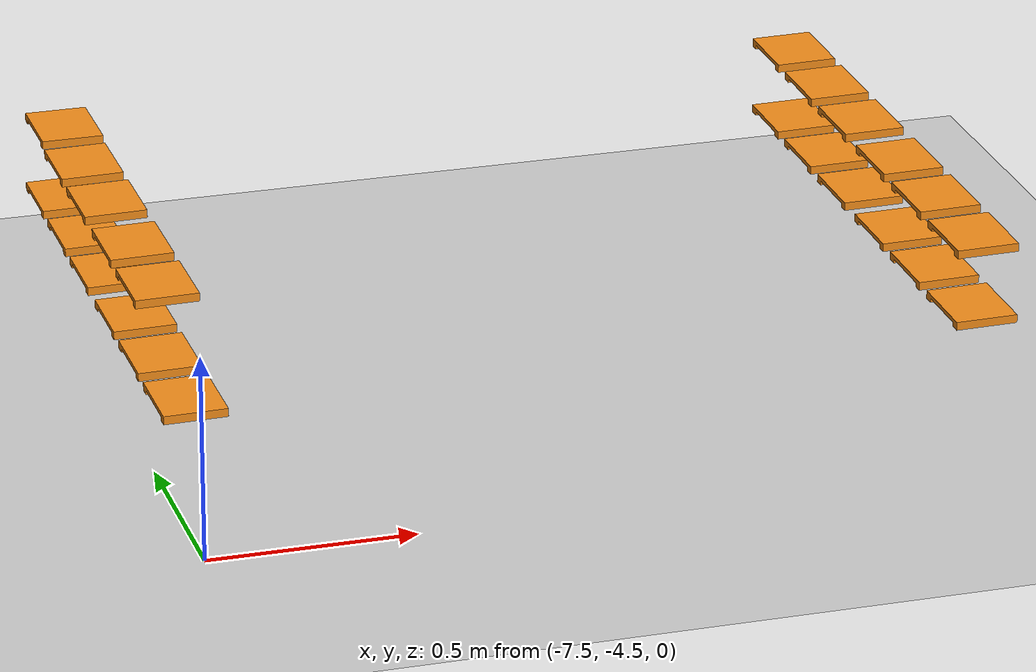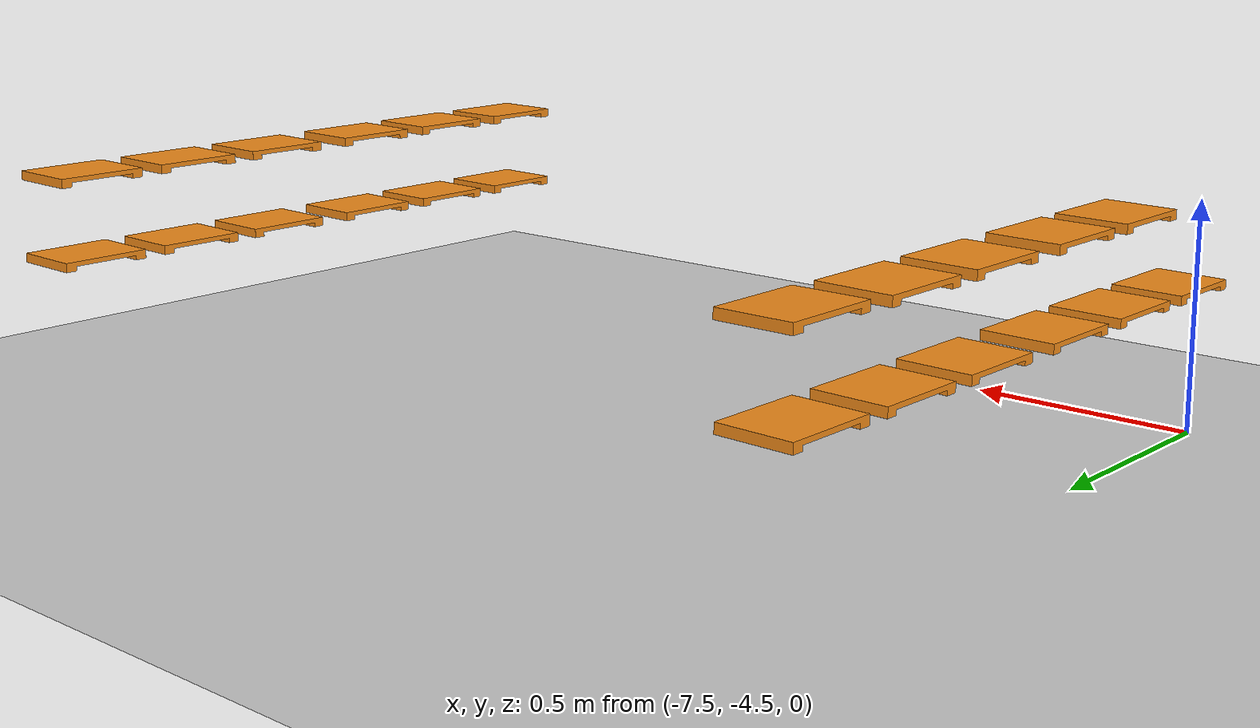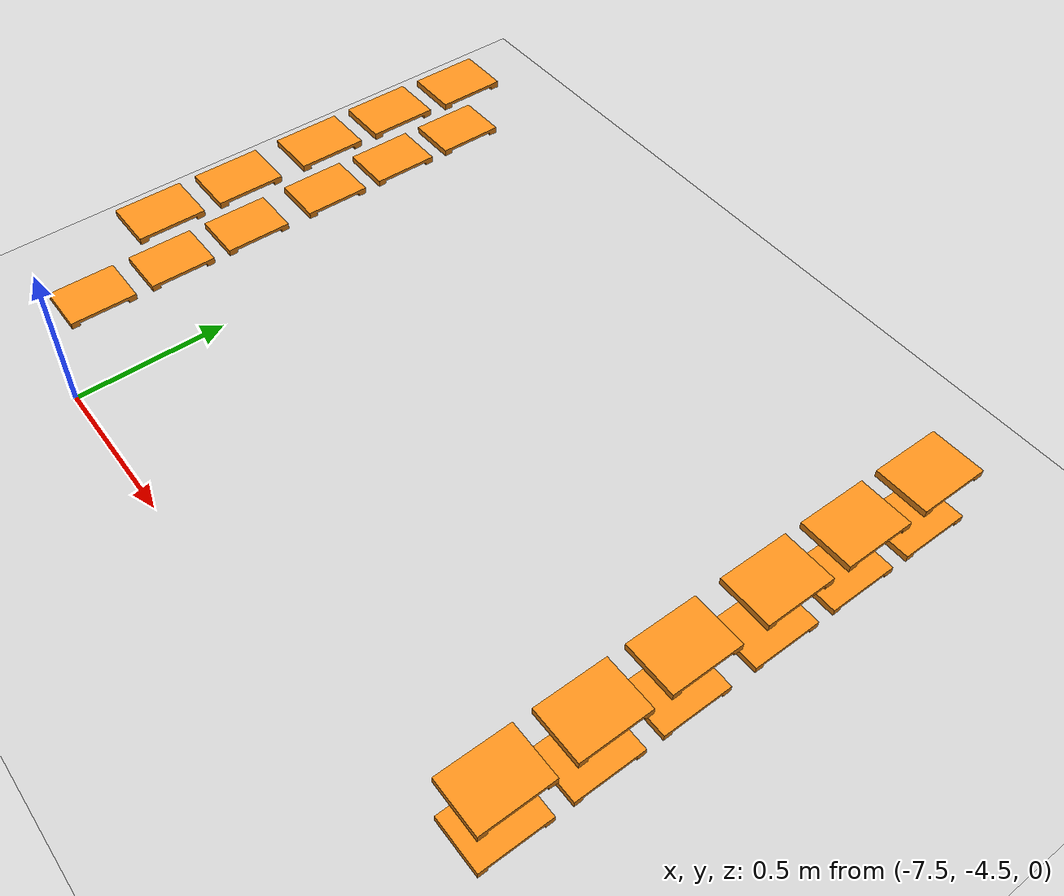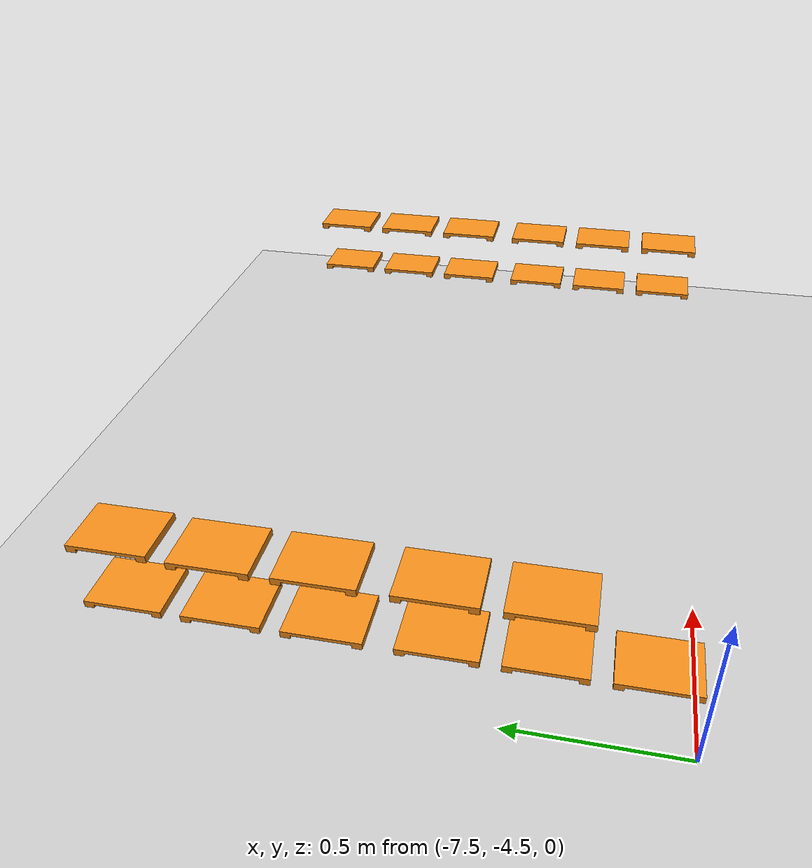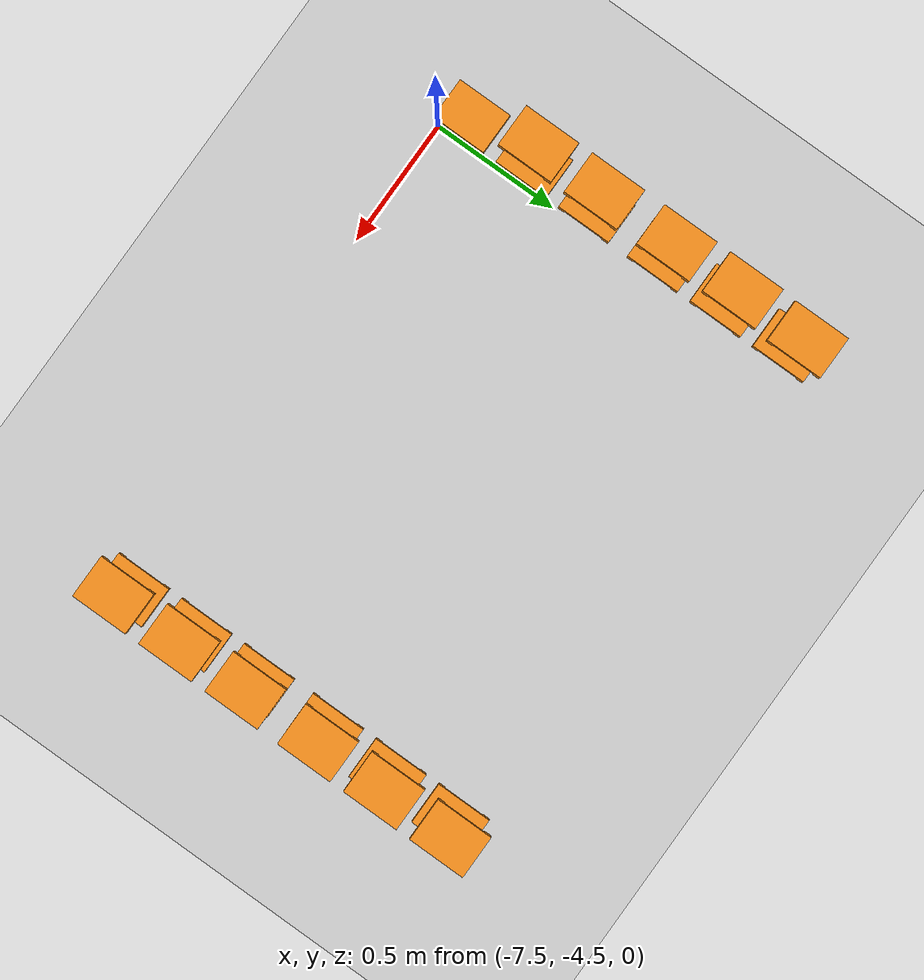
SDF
<sdf version="1.7">
 <world name="default">
  <model name="ground_plane">
   <static>1</static>
   <link name="link">
    <collision name="collision">
     <geometry><plane><normal>0 0 1</normal><size>100 100</size></plane></geometry>
     <surface>
      <contact><collide_bitmask>65535</collide_bitmask></contact>
      <friction><ode><mu>1</mu><mu2>1</mu2></ode></friction>
     </surface>
    </collision>
    <visual name="visual">
     <cast_shadows>0</cast_shadows>
     <geometry><plane><normal>0 0 1</normal><size>100 100</size></plane></geometry>
     <material>
      <script><uri>file://media/materials/scripts/gazebo.material</uri><name>Gazebo/Grey</name></script>
     </material>
    </visual>
   </link>
  </model>
  <model name="pallet_1">
   <pose>-7.5 -3.088 0.512 0 0 0</pose>
   <link name="link">
    <inertial>
     <pose>0 0 0 0 -0 1.571</pose>
     <inertia>
      <ixx>0.00220983</ixx>
      <ixy>0</ixy>
      <ixz>0</ixz>
      <iyy>0.00128087</iyy>
      <iyz>0</iyz>
      <izz>0.00244903</izz>
     </inertia>
     <mass>0.01</mass>
    </inertial>
    <visual name="visual1">
     <cast_shadows>0</cast_shadows>
     <geometry><mesh><uri>model://pallet/meshes/pallet.stl</uri></mesh></geometry>
     <material>
      <script><uri>file://media/materials/scripts/gazebo.material</uri><name>Gazebo/Orange</name></script>
      <shader type="pixel"><normal_map>__default__</normal_map></shader>
      <emissive>0 0 0 1</emissive>
     </material>
     <pose>0 0 -0 0 -0 1.571</pose>
    </visual>
    <collision name="collision_0">
     <pose>0 0 0 0 -0 1.571</pose>
     <geometry><mesh><uri>model://pallet/meshes/pallet.stl</uri></mesh></geometry>
     <surface>
      <friction>
       <ode><mu>1</mu><mu2>1</mu2><fdir1>0 0 0</fdir1><slip1>0</slip1><slip2>0</slip2></ode>
       <torsional>
        <coefficient>1</coefficient>
        <patch_radius>0</patch_radius>
        <surface_radius>0</surface_radius>
        <use_patch_radius>1</use_patch_radius>
        <ode><slip>0</slip></ode>
       </torsional>
      </friction>
      <bounce><restitution_coefficient>0</restitution_coefficient><threshold>1e+06</threshold></bounce>
      <contact>
       <collide_without_contact>0</collide_without_contact>
       <collide_without_contact_bitmask>1</collide_without_contact_bitmask>
       <collide_bitmask>1</collide_bitmask>
       <ode>
        <soft_cfm>0</soft_cfm>
        <soft_erp>0.2</soft_erp>
        <kp>1e+13</kp>
        <kd>1</kd>
        <max_vel>0.01</max_vel>
        <min_depth>0</min_depth>
       </ode>
       <bullet>
        <split_impulse>1</split_impulse>
        <split_impulse_penetration_threshold>-0.01</split_impulse_penetration_threshold>
        <soft_cfm>0</soft_cfm>
        <soft_erp>0.2</soft_erp>
        <kp>1e+13</kp>
        <kd>1</kd>
       </bullet>
      </contact>
     </surface>
    </collision>
   </link>
   <static>0</static>
  </model>
  <model name="pallet_2">
   <pose>-7.50644 -3.338 0.51102 3.5e-05 -0.01254 4e-06</pose>
   <link name="link">
    <inertial>
     <pose>0 0 0 0 -0 1.571</pose>
     <inertia>
      <ixx>0.00220983</ixx>
      <ixy>0</ixy>
      <ixz>0</ixz>
      <iyy>0.00128087</iyy>
      <iyz>0</iyz>
      <izz>0.00244903</izz>
     </inertia>
     <mass>0.01</mass>
    </inertial>
    <visual name="visual1">
     <cast_shadows>0</cast_shadows>
     <geometry><mesh><uri>model://pallet/meshes/pallet.stl</uri></mesh></geometry>
     <material>
      <script><uri>file://media/materials/scripts/gazebo.material</uri><name>Gazebo/Orange</name></script>
      <shader type="pixel"><normal_map>__default__</normal_map></shader>
      <emissive>0 0 0 1</emissive>
     </material>
     <pose>0 0 -0 0 -0 1.571</pose>
    </visual>
    <collision name="collision_0">
     <pose>0 0 0 0 -0 1.571</pose>
     <geometry><mesh><uri>model://pallet/meshes/pallet.stl</uri></mesh></geometry>
     <surface>
      <friction>
       <ode><mu>1</mu><mu2>1</mu2><fdir1>0 0 0</fdir1><slip1>0</slip1><slip2>0</slip2></ode>
       <torsional>
        <coefficient>1</coefficient>
        <patch_radius>0</patch_radius>
        <surface_radius>0</surface_radius>
        <use_patch_radius>1</use_patch_radius>
        <ode><slip>0</slip></ode>
       </torsional>
      </friction>
      <bounce><restitution_coefficient>0</restitution_coefficient><threshold>1e+06</threshold></bounce>
      <contact>
       <collide_without_contact>0</collide_without_contact>
       <collide_without_contact_bitmask>1</collide_without_contact_bitmask>
       <collide_bitmask>1</collide_bitmask>
       <ode>
        <soft_cfm>0</soft_cfm>
        <soft_erp>0.2</soft_erp>
        <kp>1e+13</kp>
        <kd>1</kd>
        <max_vel>0.01</max_vel>
        <min_depth>0</min_depth>
       </ode>
       <bullet>
        <split_impulse>1</split_impulse>
        <split_impulse_penetration_threshold>-0.01</split_impulse_penetration_threshold>
        <soft_cfm>0</soft_cfm>
        <soft_erp>0.2</soft_erp>
        <kp>1e+13</kp>
        <kd>1</kd>
       </bullet>
      </contact>
     </surface>
    </collision>
   </link>
   <static>0</static>
  </model>
  <model name="pallet_3">
   <pose>-7.50643 -3.588 0.511018 4.4e-05 -0.012541 2e-06</pose>
   <link name="link">
    <inertial>
     <pose>0 0 0 0 -0 1.571</pose>
     <inertia>
      <ixx>0.00220983</ixx>
      <ixy>0</ixy>
      <ixz>0</ixz>
      <iyy>0.00128087</iyy>
      <iyz>0</iyz>
      <izz>0.00244903</izz>
     </inertia>
     <mass>0.01</mass>
    </inertial>
    <visual name="visual1">
     <cast_shadows>0</cast_shadows>
     <geometry><mesh><uri>model://pallet/meshes/pallet.stl</uri></mesh></geometry>
     <material>
      <script><uri>file://media/materials/scripts/gazebo.material</uri><name>Gazebo/Orange</name></script>
      <shader type="pixel"><normal_map>__default__</normal_map></shader>
      <emissive>0 0 0 1</emissive>
     </material>
     <pose>0 0 -0 0 -0 1.571</pose>
    </visual>
    <collision name="collision_0">
     <pose>0 0 0 0 -0 1.571</pose>
     <geometry><mesh><uri>model://pallet/meshes/pallet.stl</uri></mesh></geometry>
     <surface>
      <friction>
       <ode><mu>1</mu><mu2>1</mu2><fdir1>0 0 0</fdir1><slip1>0</slip1><slip2>0</slip2></ode>
       <torsional>
        <coefficient>1</coefficient>
        <patch_radius>0</patch_radius>
        <surface_radius>0</surface_radius>
        <use_patch_radius>1</use_patch_radius>
        <ode><slip>0</slip></ode>
       </torsional>
      </friction>
      <bounce><restitution_coefficient>0</restitution_coefficient><threshold>1e+06</threshold></bounce>
      <contact>
       <collide_without_contact>0</collide_without_contact>
       <collide_without_contact_bitmask>1</collide_without_contact_bitmask>
       <collide_bitmask>1</collide_bitmask>
       <ode>
        <soft_cfm>0</soft_cfm>
        <soft_erp>0.2</soft_erp>
        <kp>1e+13</kp>
        <kd>1</kd>
        <max_vel>0.01</max_vel>
        <min_depth>0</min_depth>
       </ode>
       <bullet>
        <split_impulse>1</split_impulse>
        <split_impulse_penetration_threshold>-0.01</split_impulse_penetration_threshold>
        <soft_cfm>0</soft_cfm>
        <soft_erp>0.2</soft_erp>
        <kp>1e+13</kp>
        <kd>1</kd>
       </bullet>
      </contact>
     </surface>
    </collision>
   </link>
   <static>0</static>
  </model>
  <model name="pallet_4">
   <pose>-7.50643 -3.8625 0.51102 1.2e-05 -0.012548 2e-06</pose>
   <link name="link">
    <inertial>
     <pose>0 0 0 0 -0 1.571</pose>
     <inertia>
      <ixx>0.00220983</ixx>
      <ixy>0</ixy>
      <ixz>0</ixz>
      <iyy>0.00128087</iyy>
      <iyz>0</iyz>
      <izz>0.00244903</izz>
     </inertia>
     <mass>0.01</mass>
    </inertial>
    <visual name="visual1">
     <cast_shadows>0</cast_shadows>
     <geometry><mesh><uri>model://pallet/meshes/pallet.stl</uri></mesh></geometry>
     <material>
      <script><uri>file://media/materials/scripts/gazebo.material</uri><name>Gazebo/Orange</name></script>
      <shader type="pixel"><normal_map>__default__</normal_map></shader>
      <emissive>0 0 0 1</emissive>
     </material>
     <pose>0 0 -0 0 -0 1.571</pose>
    </visual>
    <collision name="collision_0">
     <pose>0 0 0 0 -0 1.571</pose>
     <geometry><mesh><uri>model://pallet/meshes/pallet.stl</uri></mesh></geometry>
     <surface>
      <friction>
       <ode><mu>1</mu><mu2>1</mu2><fdir1>0 0 0</fdir1><slip1>0</slip1><slip2>0</slip2></ode>
       <torsional>
        <coefficient>1</coefficient>
        <patch_radius>0</patch_radius>
        <surface_radius>0</surface_radius>
        <use_patch_radius>1</use_patch_radius>
        <ode><slip>0</slip></ode>
       </torsional>
      </friction>
      <bounce><restitution_coefficient>0</restitution_coefficient><threshold>1e+06</threshold></bounce>
      <contact>
       <collide_without_contact>0</collide_without_contact>
       <collide_without_contact_bitmask>1</collide_without_contact_bitmask>
       <collide_bitmask>1</collide_bitmask>
       <ode>
        <soft_cfm>0</soft_cfm>
        <soft_erp>0.2</soft_erp>
        <kp>1e+13</kp>
        <kd>1</kd>
        <max_vel>0.01</max_vel>
        <min_depth>0</min_depth>
       </ode>
       <bullet>
        <split_impulse>1</split_impulse>
        <split_impulse_penetration_threshold>-0.01</split_impulse_penetration_threshold>
        <soft_cfm>0</soft_cfm>
        <soft_erp>0.2</soft_erp>
        <kp>1e+13</kp>
        <kd>1</kd>
       </bullet>
      </contact>
     </surface>
    </collision>
   </link>
   <static>0</static>
  </model>
  <model name="pallet_5">
   <pose>-7.50643 -4.1125 0.511017 2.9e-05 -0.012542 1e-06</pose>
   <link name="link">
    <inertial>
     <pose>0 0 0 0 -0 1.571</pose>
     <inertia>
      <ixx>0.00220983</ixx>
      <ixy>0</ixy>
      <ixz>0</ixz>
      <iyy>0.00128087</iyy>
      <iyz>0</iyz>
      <izz>0.00244903</izz>
     </inertia>
     <mass>0.01</mass>
    </inertial>
    <visual name="visual1">
     <cast_shadows>0</cast_shadows>
     <geometry><mesh><uri>model://pallet/meshes/pallet.stl</uri></mesh></geometry>
     <material>
      <script><uri>file://media/materials/scripts/gazebo.material</uri><name>Gazebo/Orange</name></script>
      <shader type="pixel"><normal_map>__default__</normal_map></shader>
      <emissive>0 0 0 1</emissive>
     </material>
     <pose>0 0 -0 0 -0 1.571</pose>
    </visual>
    <collision name="collision_0">
     <pose>0 0 0 0 -0 1.571</pose>
     <geometry><mesh><uri>model://pallet/meshes/pallet.stl</uri></mesh></geometry>
     <surface>
      <friction>
       <ode><mu>1</mu><mu2>1</mu2><fdir1>0 0 0</fdir1><slip1>0</slip1><slip2>0</slip2></ode>
       <torsional>
        <coefficient>1</coefficient>
        <patch_radius>0</patch_radius>
        <surface_radius>0</surface_radius>
        <use_patch_radius>1</use_patch_radius>
        <ode><slip>0</slip></ode>
       </torsional>
      </friction>
      <bounce><restitution_coefficient>0</restitution_coefficient><threshold>1e+06</threshold></bounce>
      <contact>
       <collide_without_contact>0</collide_without_contact>
       <collide_without_contact_bitmask>1</collide_without_contact_bitmask>
       <collide_bitmask>1</collide_bitmask>
       <ode>
        <soft_cfm>0</soft_cfm>
        <soft_erp>0.2</soft_erp>
        <kp>1e+13</kp>
        <kd>1</kd>
        <max_vel>0.01</max_vel>
        <min_depth>0</min_depth>
       </ode>
       <bullet>
        <split_impulse>1</split_impulse>
        <split_impulse_penetration_threshold>-0.01</split_impulse_penetration_threshold>
        <soft_cfm>0</soft_cfm>
        <soft_erp>0.2</soft_erp>
        <kp>1e+13</kp>
        <kd>1</kd>
       </bullet>
      </contact>
     </surface>
    </collision>
   </link>
   <static>0</static>
  </model>
  <model name="pallet_13">
   <pose>-7.50418 -3.088 0.331032 8e-06 -0.012541 -3e-06</pose>
   <link name="link">
    <inertial>
     <pose>0 0 0 0 -0 1.571</pose>
     <inertia>
      <ixx>0.00220983</ixx>
      <ixy>0</ixy>
      <ixz>0</ixz>
      <iyy>0.00128087</iyy>
      <iyz>0</iyz>
      <izz>0.00244903</izz>
     </inertia>
     <mass>0.01</mass>
    </inertial>
    <visual name="visual1">
     <cast_shadows>0</cast_shadows>
     <geometry><mesh><uri>model://pallet/meshes/pallet.stl</uri></mesh></geometry>
     <material>
      <script><uri>file://media/materials/scripts/gazebo.material</uri><name>Gazebo/Orange</name></script>
      <shader type="pixel"><normal_map>__default__</normal_map></shader>
      <emissive>0 0 0 1</emissive>
     </material>
     <pose>0 0 -0 0 -0 1.571</pose>
    </visual>
    <collision name="collision_0">
     <pose>0 0 0 0 -0 1.571</pose>
     <geometry><mesh><uri>model://pallet/meshes/pallet.stl</uri></mesh></geometry>
     <surface>
      <friction>
       <ode><mu>1</mu><mu2>1</mu2><fdir1>0 0 0</fdir1><slip1>0</slip1><slip2>0</slip2></ode>
       <torsional>
        <coefficient>1</coefficient>
        <patch_radius>0</patch_radius>
        <surface_radius>0</surface_radius>
        <use_patch_radius>1</use_patch_radius>
        <ode><slip>0</slip></ode>
       </torsional>
      </friction>
      <bounce><restitution_coefficient>0</restitution_coefficient><threshold>1e+06</threshold></bounce>
      <contact>
       <collide_without_contact>0</collide_without_contact>
       <collide_without_contact_bitmask>1</collide_without_contact_bitmask>
       <collide_bitmask>1</collide_bitmask>
       <ode>
        <soft_cfm>0</soft_cfm>
        <soft_erp>0.2</soft_erp>
        <kp>1e+13</kp>
        <kd>1</kd>
        <max_vel>0.01</max_vel>
        <min_depth>0</min_depth>
       </ode>
       <bullet>
        <split_impulse>1</split_impulse>
        <split_impulse_penetration_threshold>-0.01</split_impulse_penetration_threshold>
        <soft_cfm>0</soft_cfm>
        <soft_erp>0.2</soft_erp>
        <kp>1e+13</kp>
        <kd>1</kd>
       </bullet>
      </contact>
     </surface>
    </collision>
   </link>
   <static>0</static>
  </model>
  <model name="pallet_14">
   <pose>-7.50418 -3.338 0.331033 4.2e-05 -0.012542 4e-06</pose>
   <link name="link">
    <inertial>
     <pose>0 0 0 0 -0 1.571</pose>
     <inertia>
      <ixx>0.00220983</ixx>
      <ixy>0</ixy>
      <ixz>0</ixz>
      <iyy>0.00128087</iyy>
      <iyz>0</iyz>
      <izz>0.00244903</izz>
     </inertia>
     <mass>0.01</mass>
    </inertial>
    <visual name="visual1">
     <cast_shadows>0</cast_shadows>
     <geometry><mesh><uri>model://pallet/meshes/pallet.stl</uri></mesh></geometry>
     <material>
      <script><uri>file://media/materials/scripts/gazebo.material</uri><name>Gazebo/Orange</name></script>
      <shader type="pixel"><normal_map>__default__</normal_map></shader>
      <emissive>0 0 0 1</emissive>
     </material>
     <pose>0 0 -0 0 -0 1.571</pose>
    </visual>
    <collision name="collision_0">
     <pose>0 0 0 0 -0 1.571</pose>
     <geometry><mesh><uri>model://pallet/meshes/pallet.stl</uri></mesh></geometry>
     <surface>
      <friction>
       <ode><mu>1</mu><mu2>1</mu2><fdir1>0 0 0</fdir1><slip1>0</slip1><slip2>0</slip2></ode>
       <torsional>
        <coefficient>1</coefficient>
        <patch_radius>0</patch_radius>
        <surface_radius>0</surface_radius>
        <use_patch_radius>1</use_patch_radius>
        <ode><slip>0</slip></ode>
       </torsional>
      </friction>
      <bounce><restitution_coefficient>0</restitution_coefficient><threshold>1e+06</threshold></bounce>
      <contact>
       <collide_without_contact>0</collide_without_contact>
       <collide_without_contact_bitmask>1</collide_without_contact_bitmask>
       <collide_bitmask>1</collide_bitmask>
       <ode>
        <soft_cfm>0</soft_cfm>
        <soft_erp>0.2</soft_erp>
        <kp>1e+13</kp>
        <kd>1</kd>
        <max_vel>0.01</max_vel>
        <min_depth>0</min_depth>
       </ode>
       <bullet>
        <split_impulse>1</split_impulse>
        <split_impulse_penetration_threshold>-0.01</split_impulse_penetration_threshold>
        <soft_cfm>0</soft_cfm>
        <soft_erp>0.2</soft_erp>
        <kp>1e+13</kp>
        <kd>1</kd>
       </bullet>
      </contact>
     </surface>
    </collision>
   </link>
   <static>0</static>
  </model>
  <model name="pallet_15">
   <pose>-7.50418 -3.588 0.331032 4.3e-05 -0.012541 4e-06</pose>
   <link name="link">
    <inertial>
     <pose>0 0 0 0 -0 1.571</pose>
     <inertia>
      <ixx>0.00220983</ixx>
      <ixy>0</ixy>
      <ixz>0</ixz>
      <iyy>0.00128087</iyy>
      <iyz>0</iyz>
      <izz>0.00244903</izz>
     </inertia>
     <mass>0.01</mass>
    </inertial>
    <visual name="visual1">
     <cast_shadows>0</cast_shadows>
     <geometry><mesh><uri>model://pallet/meshes/pallet.stl</uri></mesh></geometry>
     <material>
      <script><uri>file://media/materials/scripts/gazebo.material</uri><name>Gazebo/Orange</name></script>
      <shader type="pixel"><normal_map>__default__</normal_map></shader>
      <emissive>0 0 0 1</emissive>
     </material>
     <pose>0 0 -0 0 -0 1.571</pose>
    </visual>
    <collision name="collision_0">
     <pose>0 0 0 0 -0 1.571</pose>
     <geometry><mesh><uri>model://pallet/meshes/pallet.stl</uri></mesh></geometry>
     <surface>
      <friction>
       <ode><mu>1</mu><mu2>1</mu2><fdir1>0 0 0</fdir1><slip1>0</slip1><slip2>0</slip2></ode>
       <torsional>
        <coefficient>1</coefficient>
        <patch_radius>0</patch_radius>
        <surface_radius>0</surface_radius>
        <use_patch_radius>1</use_patch_radius>
        <ode><slip>0</slip></ode>
       </torsional>
      </friction>
      <bounce><restitution_coefficient>0</restitution_coefficient><threshold>1e+06</threshold></bounce>
      <contact>
       <collide_without_contact>0</collide_without_contact>
       <collide_without_contact_bitmask>1</collide_without_contact_bitmask>
       <collide_bitmask>1</collide_bitmask>
       <ode>
        <soft_cfm>0</soft_cfm>
        <soft_erp>0.2</soft_erp>
        <kp>1e+13</kp>
        <kd>1</kd>
        <max_vel>0.01</max_vel>
        <min_depth>0</min_depth>
       </ode>
       <bullet>
        <split_impulse>1</split_impulse>
        <split_impulse_penetration_threshold>-0.01</split_impulse_penetration_threshold>
        <soft_cfm>0</soft_cfm>
        <soft_erp>0.2</soft_erp>
        <kp>1e+13</kp>
        <kd>1</kd>
       </bullet>
      </contact>
     </surface>
    </collision>
   </link>
   <static>0</static>
  </model>
  <model name="pallet_16">
   <pose>-7.50417 -3.8625 0.331034 1.7e-05 -0.012541 3e-06</pose>
   <link name="link">
    <inertial>
     <pose>0 0 0 0 -0 1.571</pose>
     <inertia>
      <ixx>0.00220983</ixx>
      <ixy>0</ixy>
      <ixz>0</ixz>
      <iyy>0.00128087</iyy>
      <iyz>0</iyz>
      <izz>0.00244903</izz>
     </inertia>
     <mass>0.01</mass>
    </inertial>
    <visual name="visual1">
     <cast_shadows>0</cast_shadows>
     <geometry><mesh><uri>model://pallet/meshes/pallet.stl</uri></mesh></geometry>
     <material>
      <script><uri>file://media/materials/scripts/gazebo.material</uri><name>Gazebo/Orange</name></script>
      <shader type="pixel"><normal_map>__default__</normal_map></shader>
      <emissive>0 0 0 1</emissive>
     </material>
     <pose>0 0 -0 0 -0 1.571</pose>
    </visual>
    <collision name="collision_0">
     <pose>0 0 0 0 -0 1.571</pose>
     <geometry><mesh><uri>model://pallet/meshes/pallet.stl</uri></mesh></geometry>
     <surface>
      <friction>
       <ode><mu>1</mu><mu2>1</mu2><fdir1>0 0 0</fdir1><slip1>0</slip1><slip2>0</slip2></ode>
       <torsional>
        <coefficient>1</coefficient>
        <patch_radius>0</patch_radius>
        <surface_radius>0</surface_radius>
        <use_patch_radius>1</use_patch_radius>
        <ode><slip>0</slip></ode>
       </torsional>
      </friction>
      <bounce><restitution_coefficient>0</restitution_coefficient><threshold>1e+06</threshold></bounce>
      <contact>
       <collide_without_contact>0</collide_without_contact>
       <collide_without_contact_bitmask>1</collide_without_contact_bitmask>
       <collide_bitmask>1</collide_bitmask>
       <ode>
        <soft_cfm>0</soft_cfm>
        <soft_erp>0.2</soft_erp>
        <kp>1e+13</kp>
        <kd>1</kd>
        <max_vel>0.01</max_vel>
        <min_depth>0</min_depth>
       </ode>
       <bullet>
        <split_impulse>1</split_impulse>
        <split_impulse_penetration_threshold>-0.01</split_impulse_penetration_threshold>
        <soft_cfm>0</soft_cfm>
        <soft_erp>0.2</soft_erp>
        <kp>1e+13</kp>
        <kd>1</kd>
       </bullet>
      </contact>
     </surface>
    </collision>
   </link>
   <static>0</static>
  </model>
  <model name="pallet_17">
   <pose>-7.50417 -4.1125 0.331032 3e-05 -0.012542 6e-06</pose>
   <link name="link">
    <inertial>
     <pose>0 0 0 0 -0 1.571</pose>
     <inertia>
      <ixx>0.00220983</ixx>
      <ixy>0</ixy>
      <ixz>0</ixz>
      <iyy>0.00128087</iyy>
      <iyz>0</iyz>
      <izz>0.00244903</izz>
     </inertia>
     <mass>0.01</mass>
    </inertial>
    <visual name="visual1">
     <cast_shadows>0</cast_shadows>
     <geometry><mesh><uri>model://pallet/meshes/pallet.stl</uri></mesh></geometry>
     <material>
      <script><uri>file://media/materials/scripts/gazebo.material</uri><name>Gazebo/Orange</name></script>
      <shader type="pixel"><normal_map>__default__</normal_map></shader>
      <emissive>0 0 0 1</emissive>
     </material>
     <pose>0 0 -0 0 -0 1.571</pose>
    </visual>
    <collision name="collision_0">
     <pose>0 0 0 0 -0 1.571</pose>
     <geometry><mesh><uri>model://pallet/meshes/pallet.stl</uri></mesh></geometry>
     <surface>
      <friction>
       <ode><mu>1</mu><mu2>1</mu2><fdir1>0 0 0</fdir1><slip1>0</slip1><slip2>0</slip2></ode>
       <torsional>
        <coefficient>1</coefficient>
        <patch_radius>0</patch_radius>
        <surface_radius>0</surface_radius>
        <use_patch_radius>1</use_patch_radius>
        <ode><slip>0</slip></ode>
       </torsional>
      </friction>
      <bounce><restitution_coefficient>0</restitution_coefficient><threshold>1e+06</threshold></bounce>
      <contact>
       <collide_without_contact>0</collide_without_contact>
       <collide_without_contact_bitmask>1</collide_without_contact_bitmask>
       <collide_bitmask>1</collide_bitmask>
       <ode>
        <soft_cfm>0</soft_cfm>
        <soft_erp>0.2</soft_erp>
        <kp>1e+13</kp>
        <kd>1</kd>
        <max_vel>0.01</max_vel>
        <min_depth>0</min_depth>
       </ode>
       <bullet>
        <split_impulse>1</split_impulse>
        <split_impulse_penetration_threshold>-0.01</split_impulse_penetration_threshold>
        <soft_cfm>0</soft_cfm>
        <soft_erp>0.2</soft_erp>
        <kp>1e+13</kp>
        <kd>1</kd>
       </bullet>
      </contact>
     </surface>
    </collision>
   </link>
   <static>0</static>
  </model>
  <model name="pallet_18">
   <pose>-7.50417 -4.3625 0.331031 3.6e-05 -0.012541 7e-06</pose>
   <link name="link">
    <inertial>
     <pose>0 0 0 0 -0 1.571</pose>
     <inertia>
      <ixx>0.00220983</ixx>
      <ixy>0</ixy>
      <ixz>0</ixz>
      <iyy>0.00128087</iyy>
      <iyz>0</iyz>
      <izz>0.00244903</izz>
     </inertia>
     <mass>0.01</mass>
    </inertial>
    <visual name="visual1">
     <cast_shadows>0</cast_shadows>
     <geometry><mesh><uri>model://pallet/meshes/pallet.stl</uri></mesh></geometry>
     <material>
      <script><uri>file://media/materials/scripts/gazebo.material</uri><name>Gazebo/Orange</name></script>
      <shader type="pixel"><normal_map>__default__</normal_map></shader>
      <emissive>0 0 0 1</emissive>
     </material>
     <pose>0 0 -0 0 -0 1.571</pose>
    </visual>
    <collision name="collision_0">
     <pose>0 0 0 0 -0 1.571</pose>
     <geometry><mesh><uri>model://pallet/meshes/pallet.stl</uri></mesh></geometry>
     <surface>
      <friction>
       <ode><mu>1</mu><mu2>1</mu2><fdir1>0 0 0</fdir1><slip1>0</slip1><slip2>0</slip2></ode>
       <torsional>
        <coefficient>1</coefficient>
        <patch_radius>0</patch_radius>
        <surface_radius>0</surface_radius>
        <use_patch_radius>1</use_patch_radius>
        <ode><slip>0</slip></ode>
       </torsional>
      </friction>
      <bounce><restitution_coefficient>0</restitution_coefficient><threshold>1e+06</threshold></bounce>
      <contact>
       <collide_without_contact>0</collide_without_contact>
       <collide_without_contact_bitmask>1</collide_without_contact_bitmask>
       <collide_bitmask>1</collide_bitmask>
       <ode>
        <soft_cfm>0</soft_cfm>
        <soft_erp>0.2</soft_erp>
        <kp>1e+13</kp>
        <kd>1</kd>
        <max_vel>0.01</max_vel>
        <min_depth>0</min_depth>
       </ode>
       <bullet>
        <split_impulse>1</split_impulse>
        <split_impulse_penetration_threshold>-0.01</split_impulse_penetration_threshold>
        <soft_cfm>0</soft_cfm>
        <soft_erp>0.2</soft_erp>
        <kp>1e+13</kp>
        <kd>1</kd>
       </bullet>
      </contact>
     </surface>
    </collision>
   </link>
   <static>0</static>
  </model>
  <model name="pallet_25">
   <pose>-5.61421 -3.088 0.331031 4e-06 -0.012628 -0</pose>
   <link name="link">
    <inertial>
     <pose>0 0 0 0 -0 1.571</pose>
     <inertia>
      <ixx>0.00220983</ixx>
      <ixy>0</ixy>
      <ixz>0</ixz>
      <iyy>0.00128087</iyy>
      <iyz>0</iyz>
      <izz>0.00244903</izz>
     </inertia>
     <mass>0.01</mass>
    </inertial>
    <visual name="visual1">
     <cast_shadows>0</cast_shadows>
     <geometry><mesh><uri>model://pallet/meshes/pallet.stl</uri></mesh></geometry>
     <material>
      <script><uri>file://media/materials/scripts/gazebo.material</uri><name>Gazebo/Orange</name></script>
      <shader type="pixel"><normal_map>__default__</normal_map></shader>
      <emissive>0 0 0 1</emissive>
     </material>
     <pose>0 0 -0 0 -0 1.571</pose>
    </visual>
    <collision name="collision_0">
     <pose>0 0 0 0 -0 1.571</pose>
     <geometry><mesh><uri>model://pallet/meshes/pallet.stl</uri></mesh></geometry>
     <surface>
      <friction>
       <ode><mu>1</mu><mu2>1</mu2><fdir1>0 0 0</fdir1><slip1>0</slip1><slip2>0</slip2></ode>
       <torsional>
        <coefficient>1</coefficient>
        <patch_radius>0</patch_radius>
        <surface_radius>0</surface_radius>
        <use_patch_radius>1</use_patch_radius>
        <ode><slip>0</slip></ode>
       </torsional>
      </friction>
      <bounce><restitution_coefficient>0</restitution_coefficient><threshold>1e+06</threshold></bounce>
      <contact>
       <collide_without_contact>0</collide_without_contact>
       <collide_without_contact_bitmask>1</collide_without_contact_bitmask>
       <collide_bitmask>1</collide_bitmask>
       <ode>
        <soft_cfm>0</soft_cfm>
        <soft_erp>0.2</soft_erp>
        <kp>1e+13</kp>
        <kd>1</kd>
        <max_vel>0.01</max_vel>
        <min_depth>0</min_depth>
       </ode>
       <bullet>
        <split_impulse>1</split_impulse>
        <split_impulse_penetration_threshold>-0.01</split_impulse_penetration_threshold>
        <soft_cfm>0</soft_cfm>
        <soft_erp>0.2</soft_erp>
        <kp>1e+13</kp>
        <kd>1</kd>
       </bullet>
      </contact>
     </surface>
    </collision>
   </link>
   <static>0</static>
  </model>
  <model name="pallet_26">
   <pose>-5.61421 -3.338 0.331027 3.7e-05 -0.012626 7e-06</pose>
   <link name="link">
    <inertial>
     <pose>0 0 0 0 -0 1.571</pose>
     <inertia>
      <ixx>0.00220983</ixx>
      <ixy>0</ixy>
      <ixz>0</ixz>
      <iyy>0.00128087</iyy>
      <iyz>0</iyz>
      <izz>0.00244903</izz>
     </inertia>
     <mass>0.01</mass>
    </inertial>
    <visual name="visual1">
     <cast_shadows>0</cast_shadows>
     <geometry><mesh><uri>model://pallet/meshes/pallet.stl</uri></mesh></geometry>
     <material>
      <script><uri>file://media/materials/scripts/gazebo.material</uri><name>Gazebo/Orange</name></script>
      <shader type="pixel"><normal_map>__default__</normal_map></shader>
      <emissive>0 0 0 1</emissive>
     </material>
     <pose>0 0 -0 0 -0 1.571</pose>
    </visual>
    <collision name="collision_0">
     <pose>0 0 0 0 -0 1.571</pose>
     <geometry><mesh><uri>model://pallet/meshes/pallet.stl</uri></mesh></geometry>
     <surface>
      <friction>
       <ode><mu>1</mu><mu2>1</mu2><fdir1>0 0 0</fdir1><slip1>0</slip1><slip2>0</slip2></ode>
       <torsional>
        <coefficient>1</coefficient>
        <patch_radius>0</patch_radius>
        <surface_radius>0</surface_radius>
        <use_patch_radius>1</use_patch_radius>
        <ode><slip>0</slip></ode>
       </torsional>
      </friction>
      <bounce><restitution_coefficient>0</restitution_coefficient><threshold>1e+06</threshold></bounce>
      <contact>
       <collide_without_contact>0</collide_without_contact>
       <collide_without_contact_bitmask>1</collide_without_contact_bitmask>
       <collide_bitmask>1</collide_bitmask>
       <ode>
        <soft_cfm>0</soft_cfm>
        <soft_erp>0.2</soft_erp>
        <kp>1e+13</kp>
        <kd>1</kd>
        <max_vel>0.01</max_vel>
        <min_depth>0</min_depth>
       </ode>
       <bullet>
        <split_impulse>1</split_impulse>
        <split_impulse_penetration_threshold>-0.01</split_impulse_penetration_threshold>
        <soft_cfm>0</soft_cfm>
        <soft_erp>0.2</soft_erp>
        <kp>1e+13</kp>
        <kd>1</kd>
       </bullet>
      </contact>
     </surface>
    </collision>
   </link>
   <static>0</static>
  </model>
  <model name="pallet_27">
   <pose>-5.61421 -3.588 0.331027 3.8e-05 -0.012626 1.2e-05</pose>
   <link name="link">
    <inertial>
     <pose>0 0 0 0 -0 1.571</pose>
     <inertia>
      <ixx>0.00220983</ixx>
      <ixy>0</ixy>
      <ixz>0</ixz>
      <iyy>0.00128087</iyy>
      <iyz>0</iyz>
      <izz>0.00244903</izz>
     </inertia>
     <mass>0.01</mass>
    </inertial>
    <visual name="visual1">
     <cast_shadows>0</cast_shadows>
     <geometry><mesh><uri>model://pallet/meshes/pallet.stl</uri></mesh></geometry>
     <material>
      <script><uri>file://media/materials/scripts/gazebo.material</uri><name>Gazebo/Orange</name></script>
      <shader type="pixel"><normal_map>__default__</normal_map></shader>
      <emissive>0 0 0 1</emissive>
     </material>
     <pose>0 0 -0 0 -0 1.571</pose>
    </visual>
    <collision name="collision_0">
     <pose>0 0 0 0 -0 1.571</pose>
     <geometry><mesh><uri>model://pallet/meshes/pallet.stl</uri></mesh></geometry>
     <surface>
      <friction>
       <ode><mu>1</mu><mu2>1</mu2><fdir1>0 0 0</fdir1><slip1>0</slip1><slip2>0</slip2></ode>
       <torsional>
        <coefficient>1</coefficient>
        <patch_radius>0</patch_radius>
        <surface_radius>0</surface_radius>
        <use_patch_radius>1</use_patch_radius>
        <ode><slip>0</slip></ode>
       </torsional>
      </friction>
      <bounce><restitution_coefficient>0</restitution_coefficient><threshold>1e+06</threshold></bounce>
      <contact>
       <collide_without_contact>0</collide_without_contact>
       <collide_without_contact_bitmask>1</collide_without_contact_bitmask>
       <collide_bitmask>1</collide_bitmask>
       <ode>
        <soft_cfm>0</soft_cfm>
        <soft_erp>0.2</soft_erp>
        <kp>1e+13</kp>
        <kd>1</kd>
        <max_vel>0.01</max_vel>
        <min_depth>0</min_depth>
       </ode>
       <bullet>
        <split_impulse>1</split_impulse>
        <split_impulse_penetration_threshold>-0.01</split_impulse_penetration_threshold>
        <soft_cfm>0</soft_cfm>
        <soft_erp>0.2</soft_erp>
        <kp>1e+13</kp>
        <kd>1</kd>
       </bullet>
      </contact>
     </surface>
    </collision>
   </link>
   <static>0</static>
  </model>
  <model name="pallet_28">
   <pose>-5.6142 -3.8625 0.331021 3.4e-05 -0.012625 9e-06</pose>
   <link name="link">
    <inertial>
     <pose>0 0 0 0 -0 1.571</pose>
     <inertia>
      <ixx>0.00220983</ixx>
      <ixy>0</ixy>
      <ixz>0</ixz>
      <iyy>0.00128087</iyy>
      <iyz>0</iyz>
      <izz>0.00244903</izz>
     </inertia>
     <mass>0.01</mass>
    </inertial>
    <visual name="visual1">
     <cast_shadows>0</cast_shadows>
     <geometry><mesh><uri>model://pallet/meshes/pallet.stl</uri></mesh></geometry>
     <material>
      <script><uri>file://media/materials/scripts/gazebo.material</uri><name>Gazebo/Orange</name></script>
      <shader type="pixel"><normal_map>__default__</normal_map></shader>
      <emissive>0 0 0 1</emissive>
     </material>
     <pose>0 0 -0 0 -0 1.571</pose>
    </visual>
    <collision name="collision_0">
     <pose>0 0 0 0 -0 1.571</pose>
     <geometry><mesh><uri>model://pallet/meshes/pallet.stl</uri></mesh></geometry>
     <surface>
      <friction>
       <ode><mu>1</mu><mu2>1</mu2><fdir1>0 0 0</fdir1><slip1>0</slip1><slip2>0</slip2></ode>
       <torsional>
        <coefficient>1</coefficient>
        <patch_radius>0</patch_radius>
        <surface_radius>0</surface_radius>
        <use_patch_radius>1</use_patch_radius>
        <ode><slip>0</slip></ode>
       </torsional>
      </friction>
      <bounce><restitution_coefficient>0</restitution_coefficient><threshold>1e+06</threshold></bounce>
      <contact>
       <collide_without_contact>0</collide_without_contact>
       <collide_without_contact_bitmask>1</collide_without_contact_bitmask>
       <collide_bitmask>1</collide_bitmask>
       <ode>
        <soft_cfm>0</soft_cfm>
        <soft_erp>0.2</soft_erp>
        <kp>1e+13</kp>
        <kd>1</kd>
        <max_vel>0.01</max_vel>
        <min_depth>0</min_depth>
       </ode>
       <bullet>
        <split_impulse>1</split_impulse>
        <split_impulse_penetration_threshold>-0.01</split_impulse_penetration_threshold>
        <soft_cfm>0</soft_cfm>
        <soft_erp>0.2</soft_erp>
        <kp>1e+13</kp>
        <kd>1</kd>
       </bullet>
      </contact>
     </surface>
    </collision>
   </link>
   <static>0</static>
  </model>
  <model name="pallet_29">
   <pose>-5.6142 -4.1125 0.331026 2.8e-05 -0.012626 8e-06</pose>
   <link name="link">
    <inertial>
     <pose>0 0 0 0 -0 1.571</pose>
     <inertia>
      <ixx>0.00220983</ixx>
      <ixy>0</ixy>
      <ixz>0</ixz>
      <iyy>0.00128087</iyy>
      <iyz>0</iyz>
      <izz>0.00244903</izz>
     </inertia>
     <mass>0.01</mass>
    </inertial>
    <visual name="visual1">
     <cast_shadows>0</cast_shadows>
     <geometry><mesh><uri>model://pallet/meshes/pallet.stl</uri></mesh></geometry>
     <material>
      <script><uri>file://media/materials/scripts/gazebo.material</uri><name>Gazebo/Orange</name></script>
      <shader type="pixel"><normal_map>__default__</normal_map></shader>
      <emissive>0 0 0 1</emissive>
     </material>
     <pose>0 0 -0 0 -0 1.571</pose>
    </visual>
    <collision name="collision_0">
     <pose>0 0 0 0 -0 1.571</pose>
     <geometry><mesh><uri>model://pallet/meshes/pallet.stl</uri></mesh></geometry>
     <surface>
      <friction>
       <ode><mu>1</mu><mu2>1</mu2><fdir1>0 0 0</fdir1><slip1>0</slip1><slip2>0</slip2></ode>
       <torsional>
        <coefficient>1</coefficient>
        <patch_radius>0</patch_radius>
        <surface_radius>0</surface_radius>
        <use_patch_radius>1</use_patch_radius>
        <ode><slip>0</slip></ode>
       </torsional>
      </friction>
      <bounce><restitution_coefficient>0</restitution_coefficient><threshold>1e+06</threshold></bounce>
      <contact>
       <collide_without_contact>0</collide_without_contact>
       <collide_without_contact_bitmask>1</collide_without_contact_bitmask>
       <collide_bitmask>1</collide_bitmask>
       <ode>
        <soft_cfm>0</soft_cfm>
        <soft_erp>0.2</soft_erp>
        <kp>1e+13</kp>
        <kd>1</kd>
        <max_vel>0.01</max_vel>
        <min_depth>0</min_depth>
       </ode>
       <bullet>
        <split_impulse>1</split_impulse>
        <split_impulse_penetration_threshold>-0.01</split_impulse_penetration_threshold>
        <soft_cfm>0</soft_cfm>
        <soft_erp>0.2</soft_erp>
        <kp>1e+13</kp>
        <kd>1</kd>
       </bullet>
      </contact>
     </surface>
    </collision>
   </link>
   <static>0</static>
  </model>
  <model name="pallet_30">
   <pose>-5.6142 -4.3625 0.331025 2.5e-05 -0.012626 9e-06</pose>
   <link name="link">
    <inertial>
     <pose>0 0 0 0 -0 1.571</pose>
     <inertia>
      <ixx>0.00220983</ixx>
      <ixy>0</ixy>
      <ixz>0</ixz>
      <iyy>0.00128087</iyy>
      <iyz>0</iyz>
      <izz>0.00244903</izz>
     </inertia>
     <mass>0.01</mass>
    </inertial>
    <visual name="visual1">
     <cast_shadows>0</cast_shadows>
     <geometry><mesh><uri>model://pallet/meshes/pallet.stl</uri></mesh></geometry>
     <material>
      <script><uri>file://media/materials/scripts/gazebo.material</uri><name>Gazebo/Orange</name></script>
      <shader type="pixel"><normal_map>__default__</normal_map></shader>
      <emissive>0 0 0 1</emissive>
     </material>
     <pose>0 0 -0 0 -0 1.571</pose>
    </visual>
    <collision name="collision_0">
     <pose>0 0 0 0 -0 1.571</pose>
     <geometry><mesh><uri>model://pallet/meshes/pallet.stl</uri></mesh></geometry>
     <surface>
      <friction>
       <ode><mu>1</mu><mu2>1</mu2><fdir1>0 0 0</fdir1><slip1>0</slip1><slip2>0</slip2></ode>
       <torsional>
        <coefficient>1</coefficient>
        <patch_radius>0</patch_radius>
        <surface_radius>0</surface_radius>
        <use_patch_radius>1</use_patch_radius>
        <ode><slip>0</slip></ode>
       </torsional>
      </friction>
      <bounce><restitution_coefficient>0</restitution_coefficient><threshold>1e+06</threshold></bounce>
      <contact>
       <collide_without_contact>0</collide_without_contact>
       <collide_without_contact_bitmask>1</collide_without_contact_bitmask>
       <collide_bitmask>1</collide_bitmask>
       <ode>
        <soft_cfm>0</soft_cfm>
        <soft_erp>0.2</soft_erp>
        <kp>1e+13</kp>
        <kd>1</kd>
        <max_vel>0.01</max_vel>
        <min_depth>0</min_depth>
       </ode>
       <bullet>
        <split_impulse>1</split_impulse>
        <split_impulse_penetration_threshold>-0.01</split_impulse_penetration_threshold>
        <soft_cfm>0</soft_cfm>
        <soft_erp>0.2</soft_erp>
        <kp>1e+13</kp>
        <kd>1</kd>
       </bullet>
      </contact>
     </surface>
    </collision>
   </link>
   <static>0</static>
  </model>
  <model name="pallet_37">
   <pose>-5.61648 -3.088 0.51101 5e-06 -0.01263 1e-06</pose>
   <link name="link">
    <inertial>
     <pose>0 0 0 0 -0 1.571</pose>
     <inertia>
      <ixx>0.00220983</ixx>
      <ixy>0</ixy>
      <ixz>0</ixz>
      <iyy>0.00128087</iyy>
      <iyz>0</iyz>
      <izz>0.00244903</izz>
     </inertia>
     <mass>0.01</mass>
    </inertial>
    <visual name="visual1">
     <cast_shadows>0</cast_shadows>
     <geometry><mesh><uri>model://pallet/meshes/pallet.stl</uri></mesh></geometry>
     <material>
      <script><uri>file://media/materials/scripts/gazebo.material</uri><name>Gazebo/Orange</name></script>
      <shader type="pixel"><normal_map>__default__</normal_map></shader>
      <emissive>0 0 0 1</emissive>
     </material>
     <pose>0 0 -0 0 -0 1.571</pose>
    </visual>
    <collision name="collision_0">
     <pose>0 0 0 0 -0 1.571</pose>
     <geometry><mesh><uri>model://pallet/meshes/pallet.stl</uri></mesh></geometry>
     <surface>
      <friction>
       <ode><mu>1</mu><mu2>1</mu2><fdir1>0 0 0</fdir1><slip1>0</slip1><slip2>0</slip2></ode>
       <torsional>
        <coefficient>1</coefficient>
        <patch_radius>0</patch_radius>
        <surface_radius>0</surface_radius>
        <use_patch_radius>1</use_patch_radius>
        <ode><slip>0</slip></ode>
       </torsional>
      </friction>
      <bounce><restitution_coefficient>0</restitution_coefficient><threshold>1e+06</threshold></bounce>
      <contact>
       <collide_without_contact>0</collide_without_contact>
       <collide_without_contact_bitmask>1</collide_without_contact_bitmask>
       <collide_bitmask>1</collide_bitmask>
       <ode>
        <soft_cfm>0</soft_cfm>
        <soft_erp>0.2</soft_erp>
        <kp>1e+13</kp>
        <kd>1</kd>
        <max_vel>0.01</max_vel>
        <min_depth>0</min_depth>
       </ode>
       <bullet>
        <split_impulse>1</split_impulse>
        <split_impulse_penetration_threshold>-0.01</split_impulse_penetration_threshold>
        <soft_cfm>0</soft_cfm>
        <soft_erp>0.2</soft_erp>
        <kp>1e+13</kp>
        <kd>1</kd>
       </bullet>
      </contact>
     </surface>
    </collision>
   </link>
   <static>0</static>
  </model>
  <model name="pallet_38">
   <pose>-5.61648 -3.338 0.511013 4e-05 -0.012626 3e-06</pose>
   <link name="link">
    <inertial>
     <pose>0 0 0 0 -0 1.571</pose>
     <inertia>
      <ixx>0.00220983</ixx>
      <ixy>0</ixy>
      <ixz>0</ixz>
      <iyy>0.00128087</iyy>
      <iyz>0</iyz>
      <izz>0.00244903</izz>
     </inertia>
     <mass>0.01</mass>
    </inertial>
    <visual name="visual1">
     <cast_shadows>0</cast_shadows>
     <geometry><mesh><uri>model://pallet/meshes/pallet.stl</uri></mesh></geometry>
     <material>
      <script><uri>file://media/materials/scripts/gazebo.material</uri><name>Gazebo/Orange</name></script>
      <shader type="pixel"><normal_map>__default__</normal_map></shader>
      <emissive>0 0 0 1</emissive>
     </material>
     <pose>0 0 -0 0 -0 1.571</pose>
    </visual>
    <collision name="collision_0">
     <pose>0 0 0 0 -0 1.571</pose>
     <geometry><mesh><uri>model://pallet/meshes/pallet.stl</uri></mesh></geometry>
     <surface>
      <friction>
       <ode><mu>1</mu><mu2>1</mu2><fdir1>0 0 0</fdir1><slip1>0</slip1><slip2>0</slip2></ode>
       <torsional>
        <coefficient>1</coefficient>
        <patch_radius>0</patch_radius>
        <surface_radius>0</surface_radius>
        <use_patch_radius>1</use_patch_radius>
        <ode><slip>0</slip></ode>
       </torsional>
      </friction>
      <bounce><restitution_coefficient>0</restitution_coefficient><threshold>1e+06</threshold></bounce>
      <contact>
       <collide_without_contact>0</collide_without_contact>
       <collide_without_contact_bitmask>1</collide_without_contact_bitmask>
       <collide_bitmask>1</collide_bitmask>
       <ode>
        <soft_cfm>0</soft_cfm>
        <soft_erp>0.2</soft_erp>
        <kp>1e+13</kp>
        <kd>1</kd>
        <max_vel>0.01</max_vel>
        <min_depth>0</min_depth>
       </ode>
       <bullet>
        <split_impulse>1</split_impulse>
        <split_impulse_penetration_threshold>-0.01</split_impulse_penetration_threshold>
        <soft_cfm>0</soft_cfm>
        <soft_erp>0.2</soft_erp>
        <kp>1e+13</kp>
        <kd>1</kd>
       </bullet>
      </contact>
     </surface>
    </collision>
   </link>
   <static>0</static>
  </model>
  <model name="pallet_39">
   <pose>-5.61648 -3.588 0.511012 4.6e-05 -0.012625 9e-06</pose>
   <link name="link">
    <inertial>
     <pose>0 0 0 0 -0 1.571</pose>
     <inertia>
      <ixx>0.00220983</ixx>
      <ixy>0</ixy>
      <ixz>0</ixz>
      <iyy>0.00128087</iyy>
      <iyz>0</iyz>
      <izz>0.00244903</izz>
     </inertia>
     <mass>0.01</mass>
    </inertial>
    <visual name="visual1">
     <cast_shadows>0</cast_shadows>
     <geometry><mesh><uri>model://pallet/meshes/pallet.stl</uri></mesh></geometry>
     <material>
      <script><uri>file://media/materials/scripts/gazebo.material</uri><name>Gazebo/Orange</name></script>
      <shader type="pixel"><normal_map>__default__</normal_map></shader>
      <emissive>0 0 0 1</emissive>
     </material>
     <pose>0 0 -0 0 -0 1.571</pose>
    </visual>
    <collision name="collision_0">
     <pose>0 0 0 0 -0 1.571</pose>
     <geometry><mesh><uri>model://pallet/meshes/pallet.stl</uri></mesh></geometry>
     <surface>
      <friction>
       <ode><mu>1</mu><mu2>1</mu2><fdir1>0 0 0</fdir1><slip1>0</slip1><slip2>0</slip2></ode>
       <torsional>
        <coefficient>1</coefficient>
        <patch_radius>0</patch_radius>
        <surface_radius>0</surface_radius>
        <use_patch_radius>1</use_patch_radius>
        <ode><slip>0</slip></ode>
       </torsional>
      </friction>
      <bounce><restitution_coefficient>0</restitution_coefficient><threshold>1e+06</threshold></bounce>
      <contact>
       <collide_without_contact>0</collide_without_contact>
       <collide_without_contact_bitmask>1</collide_without_contact_bitmask>
       <collide_bitmask>1</collide_bitmask>
       <ode>
        <soft_cfm>0</soft_cfm>
        <soft_erp>0.2</soft_erp>
        <kp>1e+13</kp>
        <kd>1</kd>
        <max_vel>0.01</max_vel>
        <min_depth>0</min_depth>
       </ode>
       <bullet>
        <split_impulse>1</split_impulse>
        <split_impulse_penetration_threshold>-0.01</split_impulse_penetration_threshold>
        <soft_cfm>0</soft_cfm>
        <soft_erp>0.2</soft_erp>
        <kp>1e+13</kp>
        <kd>1</kd>
       </bullet>
      </contact>
     </surface>
    </collision>
   </link>
   <static>0</static>
  </model>
  <model name="pallet_40">
   <pose>-5.61648 -3.8625 0.511015 2e-06 -0.012632 7e-06</pose>
   <link name="link">
    <inertial>
     <pose>0 0 0 0 -0 1.571</pose>
     <inertia>
      <ixx>0.00220983</ixx>
      <ixy>0</ixy>
      <ixz>0</ixz>
      <iyy>0.00128087</iyy>
      <iyz>0</iyz>
      <izz>0.00244903</izz>
     </inertia>
     <mass>0.01</mass>
    </inertial>
    <visual name="visual1">
     <cast_shadows>0</cast_shadows>
     <geometry><mesh><uri>model://pallet/meshes/pallet.stl</uri></mesh></geometry>
     <material>
      <script><uri>file://media/materials/scripts/gazebo.material</uri><name>Gazebo/Orange</name></script>
      <shader type="pixel"><normal_map>__default__</normal_map></shader>
      <emissive>0 0 0 1</emissive>
     </material>
     <pose>0 0 -0 0 -0 1.571</pose>
    </visual>
    <collision name="collision_0">
     <pose>0 0 0 0 -0 1.571</pose>
     <geometry><mesh><uri>model://pallet/meshes/pallet.stl</uri></mesh></geometry>
     <surface>
      <friction>
       <ode><mu>1</mu><mu2>1</mu2><fdir1>0 0 0</fdir1><slip1>0</slip1><slip2>0</slip2></ode>
       <torsional>
        <coefficient>1</coefficient>
        <patch_radius>0</patch_radius>
        <surface_radius>0</surface_radius>
        <use_patch_radius>1</use_patch_radius>
        <ode><slip>0</slip></ode>
       </torsional>
      </friction>
      <bounce><restitution_coefficient>0</restitution_coefficient><threshold>1e+06</threshold></bounce>
      <contact>
       <collide_without_contact>0</collide_without_contact>
       <collide_without_contact_bitmask>1</collide_without_contact_bitmask>
       <collide_bitmask>1</collide_bitmask>
       <ode>
        <soft_cfm>0</soft_cfm>
        <soft_erp>0.2</soft_erp>
        <kp>1e+13</kp>
        <kd>1</kd>
        <max_vel>0.01</max_vel>
        <min_depth>0</min_depth>
       </ode>
       <bullet>
        <split_impulse>1</split_impulse>
        <split_impulse_penetration_threshold>-0.01</split_impulse_penetration_threshold>
        <soft_cfm>0</soft_cfm>
        <soft_erp>0.2</soft_erp>
        <kp>1e+13</kp>
        <kd>1</kd>
       </bullet>
      </contact>
     </surface>
    </collision>
   </link>
   <static>0</static>
  </model>
  <model name="pallet_41">
   <pose>-5.61647 -4.1125 0.511012 2.5e-05 -0.012627 3e-06</pose>
   <link name="link">
    <inertial>
     <pose>0 0 0 0 -0 1.571</pose>
     <inertia>
      <ixx>0.00220983</ixx>
      <ixy>0</ixy>
      <ixz>0</ixz>
      <iyy>0.00128087</iyy>
      <iyz>0</iyz>
      <izz>0.00244903</izz>
     </inertia>
     <mass>0.01</mass>
    </inertial>
    <visual name="visual1">
     <cast_shadows>0</cast_shadows>
     <geometry><mesh><uri>model://pallet/meshes/pallet.stl</uri></mesh></geometry>
     <material>
      <script><uri>file://media/materials/scripts/gazebo.material</uri><name>Gazebo/Orange</name></script>
      <shader type="pixel"><normal_map>__default__</normal_map></shader>
      <emissive>0 0 0 1</emissive>
     </material>
     <pose>0 0 -0 0 -0 1.571</pose>
    </visual>
    <collision name="collision_0">
     <pose>0 0 0 0 -0 1.571</pose>
     <geometry><mesh><uri>model://pallet/meshes/pallet.stl</uri></mesh></geometry>
     <surface>
      <friction>
       <ode><mu>1</mu><mu2>1</mu2><fdir1>0 0 0</fdir1><slip1>0</slip1><slip2>0</slip2></ode>
       <torsional>
        <coefficient>1</coefficient>
        <patch_radius>0</patch_radius>
        <surface_radius>0</surface_radius>
        <use_patch_radius>1</use_patch_radius>
        <ode><slip>0</slip></ode>
       </torsional>
      </friction>
      <bounce><restitution_coefficient>0</restitution_coefficient><threshold>1e+06</threshold></bounce>
      <contact>
       <collide_without_contact>0</collide_without_contact>
       <collide_without_contact_bitmask>1</collide_without_contact_bitmask>
       <collide_bitmask>1</collide_bitmask>
       <ode>
        <soft_cfm>0</soft_cfm>
        <soft_erp>0.2</soft_erp>
        <kp>1e+13</kp>
        <kd>1</kd>
        <max_vel>0.01</max_vel>
        <min_depth>0</min_depth>
       </ode>
       <bullet>
        <split_impulse>1</split_impulse>
        <split_impulse_penetration_threshold>-0.01</split_impulse_penetration_threshold>
        <soft_cfm>0</soft_cfm>
        <soft_erp>0.2</soft_erp>
        <kp>1e+13</kp>
        <kd>1</kd>
       </bullet>
      </contact>
     </surface>
    </collision>
   </link>
   <static>0</static>
  </model>
  <model name="pallet_42">
   <pose>-5.61647 -4.3625 0.51101 3e-05 -0.012626 6e-06</pose>
   <link name="link">
    <inertial>
     <pose>0 0 0 0 -0 1.571</pose>
     <inertia>
      <ixx>0.00220983</ixx>
      <ixy>0</ixy>
      <ixz>0</ixz>
      <iyy>0.00128087</iyy>
      <iyz>0</iyz>
      <izz>0.00244903</izz>
     </inertia>
     <mass>0.01</mass>
    </inertial>
    <visual name="visual1">
     <cast_shadows>0</cast_shadows>
     <geometry><mesh><uri>model://pallet/meshes/pallet.stl</uri></mesh></geometry>
     <material>
      <script><uri>file://media/materials/scripts/gazebo.material</uri><name>Gazebo/Orange</name></script>
      <shader type="pixel"><normal_map>__default__</normal_map></shader>
      <emissive>0 0 0 1</emissive>
     </material>
     <pose>0 0 -0 0 -0 1.571</pose>
    </visual>
    <collision name="collision_0">
     <pose>0 0 0 0 -0 1.571</pose>
     <geometry><mesh><uri>model://pallet/meshes/pallet.stl</uri></mesh></geometry>
     <surface>
      <friction>
       <ode><mu>1</mu><mu2>1</mu2><fdir1>0 0 0</fdir1><slip1>0</slip1><slip2>0</slip2></ode>
       <torsional>
        <coefficient>1</coefficient>
        <patch_radius>0</patch_radius>
        <surface_radius>0</surface_radius>
        <use_patch_radius>1</use_patch_radius>
        <ode><slip>0</slip></ode>
       </torsional>
      </friction>
      <bounce><restitution_coefficient>0</restitution_coefficient><threshold>1e+06</threshold></bounce>
      <contact>
       <collide_without_contact>0</collide_without_contact>
       <collide_without_contact_bitmask>1</collide_without_contact_bitmask>
       <collide_bitmask>1</collide_bitmask>
       <ode>
        <soft_cfm>0</soft_cfm>
        <soft_erp>0.2</soft_erp>
        <kp>1e+13</kp>
        <kd>1</kd>
        <max_vel>0.01</max_vel>
        <min_depth>0</min_depth>
       </ode>
       <bullet>
        <split_impulse>1</split_impulse>
        <split_impulse_penetration_threshold>-0.01</split_impulse_penetration_threshold>
        <soft_cfm>0</soft_cfm>
        <soft_erp>0.2</soft_erp>
        <kp>1e+13</kp>
        <kd>1</kd>
       </bullet>
      </contact>
     </surface>
    </collision>
   </link>
   <static>0</static>
  </model>
 </world>
</sdf>
